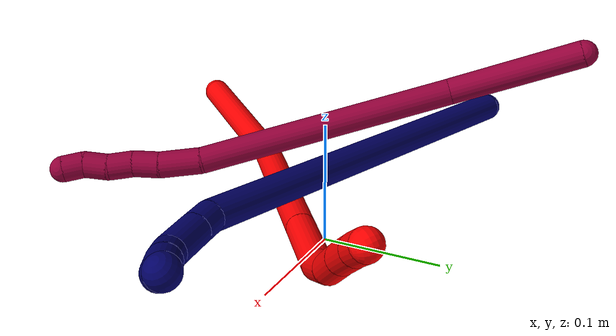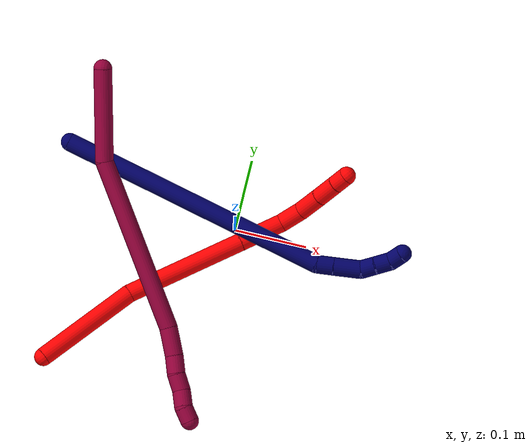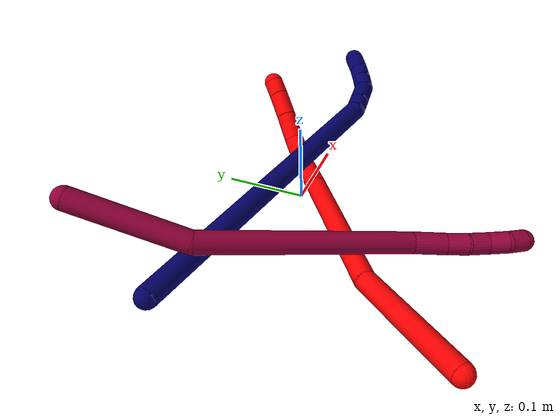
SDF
<sdf version="1.7">
 <world name="default">
  <model name="2">
   <static>0</static>
   <link name="2">
    <collision name="collision-cylinder-e_1_1_4">
     <pose>0.062499 0.038653 0.00422 -1.46206 1.01426 -0.924487</pose>
     <geometry><cylinder><radius>0.0125</radius><length>0.147213</length></cylinder></geometry>
     <surface>
      <friction><ode><mu>1.16</mu><mu2>1.16</mu2><slip1>0</slip1><slip2>0</slip2></ode></friction>
      <contact><ode><kp>1e+06</kp><kd>1</kd><max_vel>0</max_vel><min_depth>0.001</min_depth></ode></contact>
     </surface>
    </collision>
    <visual name="visual-cylinder-e_1_1_4">
     <pose>0.062499 0.038653 0.00422 -1.46206 1.01426 -0.924487</pose>
     <geometry><cylinder><radius>0.0125</radius><length>0.147213</length></cylinder></geometry>
     <material><ambient>1 0 0 1</ambient></material>
    </visual>
    <collision name="collision-cylinder-e_2_4_5">
     <pose>0.185205 0.132095 0.028837 -1.21442 0.800097 -0.571488</pose>
     <geometry><cylinder><radius>0.0125</radius><length>0.167845</length></cylinder></geometry>
     <surface>
      <friction><ode><mu>1.16</mu><mu2>1.16</mu2><slip1>0</slip1><slip2>0</slip2></ode></friction>
      <contact><ode><kp>1e+06</kp><kd>1</kd><max_vel>0</max_vel><min_depth>0.001</min_depth></ode></contact>
     </surface>
    </collision>
    <visual name="visual-cylinder-e_2_4_5">
     <pose>0.185205 0.132095 0.028837 -1.21442 0.800097 -0.571488</pose>
     <geometry><cylinder><radius>0.0125</radius><length>0.167845</length></cylinder></geometry>
     <material><ambient>1 0 0 1</ambient></material>
    </visual>
    <collision name="collision-cylinder-e_3_5_6">
     <pose>0.268393 0.206695 0.056746 -1.20832 0.825975 -0.587433</pose>
     <geometry><cylinder><radius>0.0125</radius><length>0.062513</length></cylinder></geometry>
     <surface>
      <friction><ode><mu>1.16</mu><mu2>1.16</mu2><slip1>0</slip1><slip2>0</slip2></ode></friction>
      <contact><ode><kp>1e+06</kp><kd>1</kd><max_vel>0</max_vel><min_depth>0.001</min_depth></ode></contact>
     </surface>
    </collision>
    <visual name="visual-cylinder-e_3_5_6">
     <pose>0.268393 0.206695 0.056746 -1.20832 0.825975 -0.587433</pose>
     <geometry><cylinder><radius>0.0125</radius><length>0.062513</length></cylinder></geometry>
     <material><ambient>1 0 0 1</ambient></material>
    </visual>
    <collision name="collision-cylinder-e_4_6_7">
     <pose>0.298659 0.241469 0.065617 -1.48028 0.451491 -0.413524</pose>
     <geometry><cylinder><radius>0.0125</radius><length>0.033396</length></cylinder></geometry>
     <surface>
      <friction><ode><mu>1.16</mu><mu2>1.16</mu2><slip1>0</slip1><slip2>0</slip2></ode></friction>
      <contact><ode><kp>1e+06</kp><kd>1</kd><max_vel>0</max_vel><min_depth>0.001</min_depth></ode></contact>
     </surface>
    </collision>
    <visual name="visual-cylinder-e_4_6_7">
     <pose>0.298659 0.241469 0.065617 -1.48028 0.451491 -0.413524</pose>
     <geometry><cylinder><radius>0.0125</radius><length>0.033396</length></cylinder></geometry>
     <material><ambient>1 0 0 1</ambient></material>
    </visual>
    <collision name="collision-cylinder-e_5_7_8">
     <pose>0.309537 0.274146 0.066312 -1.6082 0.199964 -0.207534</pose>
     <geometry><cylinder><radius>0.0125</radius><length>0.036172</length></cylinder></geometry>
     <surface>
      <friction><ode><mu>1.16</mu><mu2>1.16</mu2><slip1>0</slip1><slip2>0</slip2></ode></friction>
      <contact><ode><kp>1e+06</kp><kd>1</kd><max_vel>0</max_vel><min_depth>0.001</min_depth></ode></contact>
     </surface>
    </collision>
    <visual name="visual-cylinder-e_5_7_8">
     <pose>0.309537 0.274146 0.066312 -1.6082 0.199964 -0.207534</pose>
     <geometry><cylinder><radius>0.0125</radius><length>0.036172</length></cylinder></geometry>
     <material><ambient>1 0 0 1</ambient></material>
    </visual>
    <collision name="collision-cylinder-e_6_8_9">
     <pose>0.31691 0.307333 0.064945 -1.61629 0.239376 -0.250409</pose>
     <geometry><cylinder><radius>0.0125</radius><length>0.03189</length></cylinder></geometry>
     <surface>
      <friction><ode><mu>1.16</mu><mu2>1.16</mu2><slip1>0</slip1><slip2>0</slip2></ode></friction>
      <contact><ode><kp>1e+06</kp><kd>1</kd><max_vel>0</max_vel><min_depth>0.001</min_depth></ode></contact>
     </surface>
    </collision>
    <visual name="visual-cylinder-e_6_8_9">
     <pose>0.31691 0.307333 0.064945 -1.61629 0.239376 -0.250409</pose>
     <geometry><cylinder><radius>0.0125</radius><length>0.03189</length></cylinder></geometry>
     <material><ambient>1 0 0 1</ambient></material>
    </visual>
    <collision name="collision-cylinder-e_7_9_2">
     <pose>0.323683 0.332847 0.063791 -1.6155 0.289435 -0.302476</pose>
     <geometry><cylinder><radius>0.0125</radius><length>0.020971</length></cylinder></geometry>
     <surface>
      <friction><ode><mu>1.16</mu><mu2>1.16</mu2><slip1>0</slip1><slip2>0</slip2></ode></friction>
      <contact><ode><kp>1e+06</kp><kd>1</kd><max_vel>0</max_vel><min_depth>0.001</min_depth></ode></contact>
     </surface>
    </collision>
    <visual name="visual-cylinder-e_7_9_2">
     <pose>0.323683 0.332847 0.063791 -1.6155 0.289435 -0.302476</pose>
     <geometry><cylinder><radius>0.0125</radius><length>0.020971</length></cylinder></geometry>
     <material><ambient>1 0 0 1</ambient></material>
    </visual>
    <collision name="collision-sphere-2">
     <pose>0.326676 0.342886 0.063342 0 -0 0</pose>
     <geometry><sphere><radius>0.0125</radius></sphere></geometry>
     <surface>
      <friction><ode><mu>1.16</mu><mu2>1.16</mu2><slip1>0</slip1><slip2>0</slip2></ode></friction>
      <contact><ode><kp>1e+06</kp><kd>1</kd><max_vel>0</max_vel><min_depth>0.001</min_depth></ode></contact>
     </surface>
    </collision>
    <visual name="visual-sphere-2">
     <pose>0.326676 0.342886 0.063342 0 -0 0</pose>
     <geometry><sphere><radius>0.0125</radius></sphere></geometry>
     <material><ambient>1 0 0 1</ambient></material>
    </visual>
    <collision name="collision-sphere-9">
     <pose>0.320691 0.322807 0.06424 0 -0 0</pose>
     <geometry><sphere><radius>0.0125</radius></sphere></geometry>
     <surface>
      <friction><ode><mu>1.16</mu><mu2>1.16</mu2><slip1>0</slip1><slip2>0</slip2></ode></friction>
      <contact><ode><kp>1e+06</kp><kd>1</kd><max_vel>0</max_vel><min_depth>0.001</min_depth></ode></contact>
     </surface>
    </collision>
    <visual name="visual-sphere-9">
     <pose>0.320691 0.322807 0.06424 0 -0 0</pose>
     <geometry><sphere><radius>0.0125</radius></sphere></geometry>
     <material><ambient>1 0 0 1</ambient></material>
    </visual>
    <collision name="collision-sphere-4">
     <pose>0.124997 0.077305 0.008439 0 -0 0</pose>
     <geometry><sphere><radius>0.0125</radius></sphere></geometry>
     <surface>
      <friction><ode><mu>1.16</mu><mu2>1.16</mu2><slip1>0</slip1><slip2>0</slip2></ode></friction>
      <contact><ode><kp>1e+06</kp><kd>1</kd><max_vel>0</max_vel><min_depth>0.001</min_depth></ode></contact>
     </surface>
    </collision>
    <visual name="visual-sphere-4">
     <pose>0.124997 0.077305 0.008439 0 -0 0</pose>
     <geometry><sphere><radius>0.0125</radius></sphere></geometry>
     <material><ambient>1 0 0 1</ambient></material>
    </visual>
    <collision name="collision-sphere-1">
     <geometry><sphere><radius>0.0125</radius></sphere></geometry>
     <surface>
      <friction><ode><mu>1.16</mu><mu2>1.16</mu2><slip1>0</slip1><slip2>0</slip2></ode></friction>
      <contact><ode><kp>1e+06</kp><kd>1</kd><max_vel>0</max_vel><min_depth>0.001</min_depth></ode></contact>
     </surface>
    </collision>
    <visual name="visual-sphere-1">
     <geometry><sphere><radius>0.0125</radius></sphere></geometry>
     <material><ambient>1 0 0 1</ambient></material>
    </visual>
    <collision name="collision-sphere-8">
     <pose>0.31313 0.291859 0.065649 0 -0 0</pose>
     <geometry><sphere><radius>0.0125</radius></sphere></geometry>
     <surface>
      <friction><ode><mu>1.16</mu><mu2>1.16</mu2><slip1>0</slip1><slip2>0</slip2></ode></friction>
      <contact><ode><kp>1e+06</kp><kd>1</kd><max_vel>0</max_vel><min_depth>0.001</min_depth></ode></contact>
     </surface>
    </collision>
    <visual name="visual-sphere-8">
     <pose>0.31313 0.291859 0.065649 0 -0 0</pose>
     <geometry><sphere><radius>0.0125</radius></sphere></geometry>
     <material><ambient>1 0 0 1</ambient></material>
    </visual>
    <collision name="collision-sphere-5">
     <pose>0.245413 0.186885 0.049234 0 -0 0</pose>
     <geometry><sphere><radius>0.0125</radius></sphere></geometry>
     <surface>
      <friction><ode><mu>1.16</mu><mu2>1.16</mu2><slip1>0</slip1><slip2>0</slip2></ode></friction>
      <contact><ode><kp>1e+06</kp><kd>1</kd><max_vel>0</max_vel><min_depth>0.001</min_depth></ode></contact>
     </surface>
    </collision>
    <visual name="visual-sphere-5">
     <pose>0.245413 0.186885 0.049234 0 -0 0</pose>
     <geometry><sphere><radius>0.0125</radius></sphere></geometry>
     <material><ambient>1 0 0 1</ambient></material>
    </visual>
    <collision name="collision-sphere-6">
     <pose>0.291373 0.226506 0.064259 0 -0 0</pose>
     <geometry><sphere><radius>0.0125</radius></sphere></geometry>
     <surface>
      <friction><ode><mu>1.16</mu><mu2>1.16</mu2><slip1>0</slip1><slip2>0</slip2></ode></friction>
      <contact><ode><kp>1e+06</kp><kd>1</kd><max_vel>0</max_vel><min_depth>0.001</min_depth></ode></contact>
     </surface>
    </collision>
    <visual name="visual-sphere-6">
     <pose>0.291373 0.226506 0.064259 0 -0 0</pose>
     <geometry><sphere><radius>0.0125</radius></sphere></geometry>
     <material><ambient>1 0 0 1</ambient></material>
    </visual>
    <collision name="collision-sphere-7">
     <pose>0.305945 0.256433 0.066975 0 -0 0</pose>
     <geometry><sphere><radius>0.0125</radius></sphere></geometry>
     <surface>
      <friction><ode><mu>1.16</mu><mu2>1.16</mu2><slip1>0</slip1><slip2>0</slip2></ode></friction>
      <contact><ode><kp>1e+06</kp><kd>1</kd><max_vel>0</max_vel><min_depth>0.001</min_depth></ode></contact>
     </surface>
    </collision>
    <visual name="visual-sphere-7">
     <pose>0.305945 0.256433 0.066975 0 -0 0</pose>
     <geometry><sphere><radius>0.0125</radius></sphere></geometry>
     <material><ambient>1 0 0 1</ambient></material>
    </visual>
    <inertial>
     <pose>0.190259 0.151089 0.034015 0 -0 0</pose>
     <mass>0.5</mass>
     <inertia>
      <ixx>9.5e-05</ixx>
      <ixy>0</ixy>
      <ixz>0</ixz>
      <iyy>0.000229</iyy>
      <iyz>0</iyz>
      <izz>-0.000967</izz>
     </inertia>
    </inertial>
   </link>
   <pose>-0.210618 -0.235106 0.030195 1.86732 0.649611 1.11023</pose>
  </model>
  <model name="7">
   <static>0</static>
   <link name="7">
    <collision name="collision-cylinder-e_1_1_4">
     <pose>0.147605 -0.035317 0.112161 0.30505 0.898103 0.14788</pose>
     <geometry><cylinder><radius>0.0125</radius><length>0.377437</length></cylinder></geometry>
     <surface>
      <friction><ode><mu>1.16</mu><mu2>1.16</mu2><slip1>0</slip1><slip2>0</slip2></ode></friction>
      <contact><ode><kp>1e+06</kp><kd>1</kd><max_vel>0</max_vel><min_depth>0.001</min_depth></ode></contact>
     </surface>
    </collision>
    <visual name="visual-cylinder-e_1_1_4">
     <pose>0.147605 -0.035317 0.112161 0.30505 0.898103 0.14788</pose>
     <geometry><cylinder><radius>0.0125</radius><length>0.377437</length></cylinder></geometry>
     <material><ambient>0.003922 0 0.403922 1</ambient></material>
    </visual>
    <collision name="collision-cylinder-e_2_4_5">
     <pose>0.304633 -0.068954 0.230549 -0.263365 0.970467 -0.139449</pose>
     <geometry><cylinder><radius>0.0125</radius><length>0.022838</length></cylinder></geometry>
     <surface>
      <friction><ode><mu>1.16</mu><mu2>1.16</mu2><slip1>0</slip1><slip2>0</slip2></ode></friction>
      <contact><ode><kp>1e+06</kp><kd>1</kd><max_vel>0</max_vel><min_depth>0.001</min_depth></ode></contact>
     </surface>
    </collision>
    <visual name="visual-cylinder-e_2_4_5">
     <pose>0.304633 -0.068954 0.230549 -0.263365 0.970467 -0.139449</pose>
     <geometry><cylinder><radius>0.0125</radius><length>0.022838</length></cylinder></geometry>
     <material><ambient>0.003922 0 0.403922 1</ambient></material>
    </visual>
    <collision name="collision-cylinder-e_3_5_6">
     <pose>0.329516 -0.06435 0.246897 -0.281433 0.972741 -0.149514</pose>
     <geometry><cylinder><radius>0.0125</radius><length>0.037416</length></cylinder></geometry>
     <surface>
      <friction><ode><mu>1.16</mu><mu2>1.16</mu2><slip1>0</slip1><slip2>0</slip2></ode></friction>
      <contact><ode><kp>1e+06</kp><kd>1</kd><max_vel>0</max_vel><min_depth>0.001</min_depth></ode></contact>
     </surface>
    </collision>
    <visual name="visual-cylinder-e_3_5_6">
     <pose>0.329516 -0.06435 0.246897 -0.281433 0.972741 -0.149514</pose>
     <geometry><cylinder><radius>0.0125</radius><length>0.037416</length></cylinder></geometry>
     <material><ambient>0.003922 0 0.403922 1</ambient></material>
    </visual>
    <collision name="collision-cylinder-e_4_6_7">
     <pose>0.350948 -0.05635 0.263418 -0.670176 0.631123 -0.226395</pose>
     <geometry><cylinder><radius>0.0125</radius><length>0.020239</length></cylinder></geometry>
     <surface>
      <friction><ode><mu>1.16</mu><mu2>1.16</mu2><slip1>0</slip1><slip2>0</slip2></ode></friction>
      <contact><ode><kp>1e+06</kp><kd>1</kd><max_vel>0</max_vel><min_depth>0.001</min_depth></ode></contact>
     </surface>
    </collision>
    <visual name="visual-cylinder-e_4_6_7">
     <pose>0.350948 -0.05635 0.263418 -0.670176 0.631123 -0.226395</pose>
     <geometry><cylinder><radius>0.0125</radius><length>0.020239</length></cylinder></geometry>
     <material><ambient>0.003922 0 0.403922 1</ambient></material>
    </visual>
    <collision name="collision-cylinder-e_5_7_8">
     <pose>0.364091 -0.045582 0.275881 -0.754203 0.711724 -0.292317</pose>
     <geometry><cylinder><radius>0.0125</radius><length>0.021961</length></cylinder></geometry>
     <surface>
      <friction><ode><mu>1.16</mu><mu2>1.16</mu2><slip1>0</slip1><slip2>0</slip2></ode></friction>
      <contact><ode><kp>1e+06</kp><kd>1</kd><max_vel>0</max_vel><min_depth>0.001</min_depth></ode></contact>
     </surface>
    </collision>
    <visual name="visual-cylinder-e_5_7_8">
     <pose>0.364091 -0.045582 0.275881 -0.754203 0.711724 -0.292317</pose>
     <geometry><cylinder><radius>0.0125</radius><length>0.021961</length></cylinder></geometry>
     <material><ambient>0.003922 0 0.403922 1</ambient></material>
    </visual>
    <collision name="collision-cylinder-e_6_8_2">
     <pose>0.373901 -0.033269 0.289035 -0.750816 0.265541 -0.105171</pose>
     <geometry><cylinder><radius>0.0125</radius><length>0.02011</length></cylinder></geometry>
     <surface>
      <friction><ode><mu>1.16</mu><mu2>1.16</mu2><slip1>0</slip1><slip2>0</slip2></ode></friction>
      <contact><ode><kp>1e+06</kp><kd>1</kd><max_vel>0</max_vel><min_depth>0.001</min_depth></ode></contact>
     </surface>
    </collision>
    <visual name="visual-cylinder-e_6_8_2">
     <pose>0.373901 -0.033269 0.289035 -0.750816 0.265541 -0.105171</pose>
     <geometry><cylinder><radius>0.0125</radius><length>0.02011</length></cylinder></geometry>
     <material><ambient>0.003922 0 0.403922 1</ambient></material>
    </visual>
    <collision name="collision-sphere-2">
     <pose>0.37654 -0.02665 0.296129 0 -0 0</pose>
     <geometry><sphere><radius>0.0125</radius></sphere></geometry>
     <surface>
      <friction><ode><mu>1.16</mu><mu2>1.16</mu2><slip1>0</slip1><slip2>0</slip2></ode></friction>
      <contact><ode><kp>1e+06</kp><kd>1</kd><max_vel>0</max_vel><min_depth>0.001</min_depth></ode></contact>
     </surface>
    </collision>
    <visual name="visual-sphere-2">
     <pose>0.37654 -0.02665 0.296129 0 -0 0</pose>
     <geometry><sphere><radius>0.0125</radius></sphere></geometry>
     <material><ambient>0.003922 0 0.403922 1</ambient></material>
    </visual>
    <collision name="collision-sphere-4">
     <pose>0.295211 -0.070634 0.224321 0 -0 0</pose>
     <geometry><sphere><radius>0.0125</radius></sphere></geometry>
     <surface>
      <friction><ode><mu>1.16</mu><mu2>1.16</mu2><slip1>0</slip1><slip2>0</slip2></ode></friction>
      <contact><ode><kp>1e+06</kp><kd>1</kd><max_vel>0</max_vel><min_depth>0.001</min_depth></ode></contact>
     </surface>
    </collision>
    <visual name="visual-sphere-4">
     <pose>0.295211 -0.070634 0.224321 0 -0 0</pose>
     <geometry><sphere><radius>0.0125</radius></sphere></geometry>
     <material><ambient>0.003922 0 0.403922 1</ambient></material>
    </visual>
    <collision name="collision-sphere-1">
     <geometry><sphere><radius>0.0125</radius></sphere></geometry>
     <surface>
      <friction><ode><mu>1.16</mu><mu2>1.16</mu2><slip1>0</slip1><slip2>0</slip2></ode></friction>
      <contact><ode><kp>1e+06</kp><kd>1</kd><max_vel>0</max_vel><min_depth>0.001</min_depth></ode></contact>
     </surface>
    </collision>
    <visual name="visual-sphere-1">
     <geometry><sphere><radius>0.0125</radius></sphere></geometry>
     <material><ambient>0.003922 0 0.403922 1</ambient></material>
    </visual>
    <collision name="collision-sphere-8">
     <pose>0.371263 -0.039888 0.281941 0 -0 0</pose>
     <geometry><sphere><radius>0.0125</radius></sphere></geometry>
     <surface>
      <friction><ode><mu>1.16</mu><mu2>1.16</mu2><slip1>0</slip1><slip2>0</slip2></ode></friction>
      <contact><ode><kp>1e+06</kp><kd>1</kd><max_vel>0</max_vel><min_depth>0.001</min_depth></ode></contact>
     </surface>
    </collision>
    <visual name="visual-sphere-8">
     <pose>0.371263 -0.039888 0.281941 0 -0 0</pose>
     <geometry><sphere><radius>0.0125</radius></sphere></geometry>
     <material><ambient>0.003922 0 0.403922 1</ambient></material>
    </visual>
    <collision name="collision-sphere-5">
     <pose>0.314056 -0.067275 0.236778 0 -0 0</pose>
     <geometry><sphere><radius>0.0125</radius></sphere></geometry>
     <surface>
      <friction><ode><mu>1.16</mu><mu2>1.16</mu2><slip1>0</slip1><slip2>0</slip2></ode></friction>
      <contact><ode><kp>1e+06</kp><kd>1</kd><max_vel>0</max_vel><min_depth>0.001</min_depth></ode></contact>
     </surface>
    </collision>
    <visual name="visual-sphere-5">
     <pose>0.314056 -0.067275 0.236778 0 -0 0</pose>
     <geometry><sphere><radius>0.0125</radius></sphere></geometry>
     <material><ambient>0.003922 0 0.403922 1</ambient></material>
    </visual>
    <collision name="collision-sphere-6">
     <pose>0.344977 -0.061424 0.257015 0 -0 0</pose>
     <geometry><sphere><radius>0.0125</radius></sphere></geometry>
     <surface>
      <friction><ode><mu>1.16</mu><mu2>1.16</mu2><slip1>0</slip1><slip2>0</slip2></ode></friction>
      <contact><ode><kp>1e+06</kp><kd>1</kd><max_vel>0</max_vel><min_depth>0.001</min_depth></ode></contact>
     </surface>
    </collision>
    <visual name="visual-sphere-6">
     <pose>0.344977 -0.061424 0.257015 0 -0 0</pose>
     <geometry><sphere><radius>0.0125</radius></sphere></geometry>
     <material><ambient>0.003922 0 0.403922 1</ambient></material>
    </visual>
    <collision name="collision-sphere-7">
     <pose>0.356919 -0.051275 0.269822 0 -0 0</pose>
     <geometry><sphere><radius>0.0125</radius></sphere></geometry>
     <surface>
      <friction><ode><mu>1.16</mu><mu2>1.16</mu2><slip1>0</slip1><slip2>0</slip2></ode></friction>
      <contact><ode><kp>1e+06</kp><kd>1</kd><max_vel>0</max_vel><min_depth>0.001</min_depth></ode></contact>
     </surface>
    </collision>
    <visual name="visual-sphere-7">
     <pose>0.356919 -0.051275 0.269822 0 -0 0</pose>
     <geometry><sphere><radius>0.0125</radius></sphere></geometry>
     <material><ambient>0.003922 0 0.403922 1</ambient></material>
    </visual>
    <inertial>
     <pose>0.195231 -0.040246 0.148078 0 -0 0</pose>
     <mass>0.5</mass>
     <inertia>
      <ixx>0.003219</ixx>
      <ixy>0</ixy>
      <ixz>0</ixz>
      <iyy>0.004817</iyy>
      <iyz>0</iyz>
      <izz>-0.002664</izz>
     </inertia>
    </inertial>
   </link>
   <pose>-0.245879 0.058296 0.047189 0.110108 0.576084 0.014632</pose>
  </model>
  <model name="8">
   <static>0</static>
   <link name="8">
    <collision name="collision-cylinder-e_1_1_4">
     <pose>0.031975 -0.054563 -0.00279 1.62189 0.529503 0.555899</pose>
     <geometry><cylinder><radius>0.0125</radius><length>0.126607</length></cylinder></geometry>
     <surface>
      <friction><ode><mu>1.16</mu><mu2>1.16</mu2><slip1>0</slip1><slip2>0</slip2></ode></friction>
      <contact><ode><kp>1e+06</kp><kd>1</kd><max_vel>0</max_vel><min_depth>0.001</min_depth></ode></contact>
     </surface>
    </collision>
    <visual name="visual-cylinder-e_1_1_4">
     <pose>0.031975 -0.054563 -0.00279 1.62189 0.529503 0.555899</pose>
     <geometry><cylinder><radius>0.0125</radius><length>0.126607</length></cylinder></geometry>
     <material><ambient>0.584314 0 0.227451 1</ambient></material>
    </visual>
    <collision name="collision-cylinder-e_2_4_5">
     <pose>0.129253 -0.203589 0.032456 1.18799 0.570217 0.390835</pose>
     <geometry><cylinder><radius>0.0125</radius><length>0.241946</length></cylinder></geometry>
     <surface>
      <friction><ode><mu>1.16</mu><mu2>1.16</mu2><slip1>0</slip1><slip2>0</slip2></ode></friction>
      <contact><ode><kp>1e+06</kp><kd>1</kd><max_vel>0</max_vel><min_depth>0.001</min_depth></ode></contact>
     </surface>
    </collision>
    <visual name="visual-cylinder-e_2_4_5">
     <pose>0.129253 -0.203589 0.032456 1.18799 0.570217 0.390835</pose>
     <geometry><cylinder><radius>0.0125</radius><length>0.241946</length></cylinder></geometry>
     <material><ambient>0.584314 0 0.227451 1</ambient></material>
    </visual>
    <collision name="collision-cylinder-e_3_5_6">
     <pose>0.202295 -0.315598 0.075088 1.31468 0.403311 0.313005</pose>
     <geometry><cylinder><radius>0.0125</radius><length>0.03944</length></cylinder></geometry>
     <surface>
      <friction><ode><mu>1.16</mu><mu2>1.16</mu2><slip1>0</slip1><slip2>0</slip2></ode></friction>
      <contact><ode><kp>1e+06</kp><kd>1</kd><max_vel>0</max_vel><min_depth>0.001</min_depth></ode></contact>
     </surface>
    </collision>
    <visual name="visual-cylinder-e_3_5_6">
     <pose>0.202295 -0.315598 0.075088 1.31468 0.403311 0.313005</pose>
     <geometry><cylinder><radius>0.0125</radius><length>0.03944</length></cylinder></geometry>
     <material><ambient>0.584314 0 0.227451 1</ambient></material>
    </visual>
    <collision name="collision-cylinder-e_4_6_7">
     <pose>0.213133 -0.344976 0.082361 1.34815 0.250053 0.200147</pose>
     <geometry><cylinder><radius>0.0125</radius><length>0.025042</length></cylinder></geometry>
     <surface>
      <friction><ode><mu>1.16</mu><mu2>1.16</mu2><slip1>0</slip1><slip2>0</slip2></ode></friction>
      <contact><ode><kp>1e+06</kp><kd>1</kd><max_vel>0</max_vel><min_depth>0.001</min_depth></ode></contact>
     </surface>
    </collision>
    <visual name="visual-cylinder-e_4_6_7">
     <pose>0.213133 -0.344976 0.082361 1.34815 0.250053 0.200147</pose>
     <geometry><cylinder><radius>0.0125</radius><length>0.025042</length></cylinder></geometry>
     <material><ambient>0.584314 0 0.227451 1</ambient></material>
    </visual>
    <collision name="collision-cylinder-e_5_7_8">
     <pose>0.221255 -0.366844 0.088845 1.20836 0.437801 0.304752</pose>
     <geometry><cylinder><radius>0.0125</radius><length>0.023701</length></cylinder></geometry>
     <surface>
      <friction><ode><mu>1.16</mu><mu2>1.16</mu2><slip1>0</slip1><slip2>0</slip2></ode></friction>
      <contact><ode><kp>1e+06</kp><kd>1</kd><max_vel>0</max_vel><min_depth>0.001</min_depth></ode></contact>
     </surface>
    </collision>
    <visual name="visual-cylinder-e_5_7_8">
     <pose>0.221255 -0.366844 0.088845 1.20836 0.437801 0.304752</pose>
     <geometry><cylinder><radius>0.0125</radius><length>0.023701</length></cylinder></geometry>
     <material><ambient>0.584314 0 0.227451 1</ambient></material>
    </visual>
    <collision name="collision-cylinder-e_6_8_9">
     <pose>0.228418 -0.387853 0.095675 1.30188 0.1857 0.141616</pose>
     <geometry><cylinder><radius>0.0125</radius><length>0.023163</length></cylinder></geometry>
     <surface>
      <friction><ode><mu>1.16</mu><mu2>1.16</mu2><slip1>0</slip1><slip2>0</slip2></ode></friction>
      <contact><ode><kp>1e+06</kp><kd>1</kd><max_vel>0</max_vel><min_depth>0.001</min_depth></ode></contact>
     </surface>
    </collision>
    <visual name="visual-cylinder-e_6_8_9">
     <pose>0.228418 -0.387853 0.095675 1.30188 0.1857 0.141616</pose>
     <geometry><cylinder><radius>0.0125</radius><length>0.023163</length></cylinder></geometry>
     <material><ambient>0.584314 0 0.227451 1</ambient></material>
    </visual>
    <collision name="collision-cylinder-e_7_9_2">
     <pose>0.235482 -0.406634 0.102671 1.10018 0.512249 0.31846</pose>
     <geometry><cylinder><radius>0.0125</radius><length>0.020101</length></cylinder></geometry>
     <surface>
      <friction><ode><mu>1.16</mu><mu2>1.16</mu2><slip1>0</slip1><slip2>0</slip2></ode></friction>
      <contact><ode><kp>1e+06</kp><kd>1</kd><max_vel>0</max_vel><min_depth>0.001</min_depth></ode></contact>
     </surface>
    </collision>
    <visual name="visual-cylinder-e_7_9_2">
     <pose>0.235482 -0.406634 0.102671 1.10018 0.512249 0.31846</pose>
     <geometry><cylinder><radius>0.0125</radius><length>0.020101</length></cylinder></geometry>
     <material><ambient>0.584314 0 0.227451 1</ambient></material>
    </visual>
    <collision name="collision-sphere-2">
     <pose>0.240408 -0.414442 0.106644 0 -0 0</pose>
     <geometry><sphere><radius>0.0125</radius></sphere></geometry>
     <surface>
      <friction><ode><mu>1.16</mu><mu2>1.16</mu2><slip1>0</slip1><slip2>0</slip2></ode></friction>
      <contact><ode><kp>1e+06</kp><kd>1</kd><max_vel>0</max_vel><min_depth>0.001</min_depth></ode></contact>
     </surface>
    </collision>
    <visual name="visual-sphere-2">
     <pose>0.240408 -0.414442 0.106644 0 -0 0</pose>
     <geometry><sphere><radius>0.0125</radius></sphere></geometry>
     <material><ambient>0.584314 0 0.227451 1</ambient></material>
    </visual>
    <collision name="collision-sphere-9">
     <pose>0.230556 -0.398826 0.098699 0 -0 0</pose>
     <geometry><sphere><radius>0.0125</radius></sphere></geometry>
     <surface>
      <friction><ode><mu>1.16</mu><mu2>1.16</mu2><slip1>0</slip1><slip2>0</slip2></ode></friction>
      <contact><ode><kp>1e+06</kp><kd>1</kd><max_vel>0</max_vel><min_depth>0.001</min_depth></ode></contact>
     </surface>
    </collision>
    <visual name="visual-sphere-9">
     <pose>0.230556 -0.398826 0.098699 0 -0 0</pose>
     <geometry><sphere><radius>0.0125</radius></sphere></geometry>
     <material><ambient>0.584314 0 0.227451 1</ambient></material>
    </visual>
    <collision name="collision-sphere-4">
     <pose>0.06395 -0.109126 -0.005581 0 -0 0</pose>
     <geometry><sphere><radius>0.0125</radius></sphere></geometry>
     <surface>
      <friction><ode><mu>1.16</mu><mu2>1.16</mu2><slip1>0</slip1><slip2>0</slip2></ode></friction>
      <contact><ode><kp>1e+06</kp><kd>1</kd><max_vel>0</max_vel><min_depth>0.001</min_depth></ode></contact>
     </surface>
    </collision>
    <visual name="visual-sphere-4">
     <pose>0.06395 -0.109126 -0.005581 0 -0 0</pose>
     <geometry><sphere><radius>0.0125</radius></sphere></geometry>
     <material><ambient>0.584314 0 0.227451 1</ambient></material>
    </visual>
    <collision name="collision-sphere-1">
     <geometry><sphere><radius>0.0125</radius></sphere></geometry>
     <surface>
      <friction><ode><mu>1.16</mu><mu2>1.16</mu2><slip1>0</slip1><slip2>0</slip2></ode></friction>
      <contact><ode><kp>1e+06</kp><kd>1</kd><max_vel>0</max_vel><min_depth>0.001</min_depth></ode></contact>
     </surface>
    </collision>
    <visual name="visual-sphere-1">
     <geometry><sphere><radius>0.0125</radius></sphere></geometry>
     <material><ambient>0.584314 0 0.227451 1</ambient></material>
    </visual>
    <collision name="collision-sphere-8">
     <pose>0.226279 -0.376879 0.092651 0 -0 0</pose>
     <geometry><sphere><radius>0.0125</radius></sphere></geometry>
     <surface>
      <friction><ode><mu>1.16</mu><mu2>1.16</mu2><slip1>0</slip1><slip2>0</slip2></ode></friction>
      <contact><ode><kp>1e+06</kp><kd>1</kd><max_vel>0</max_vel><min_depth>0.001</min_depth></ode></contact>
     </surface>
    </collision>
    <visual name="visual-sphere-8">
     <pose>0.226279 -0.376879 0.092651 0 -0 0</pose>
     <geometry><sphere><radius>0.0125</radius></sphere></geometry>
     <material><ambient>0.584314 0 0.227451 1</ambient></material>
    </visual>
    <collision name="collision-sphere-5">
     <pose>0.194556 -0.298052 0.070493 0 -0 0</pose>
     <geometry><sphere><radius>0.0125</radius></sphere></geometry>
     <surface>
      <friction><ode><mu>1.16</mu><mu2>1.16</mu2><slip1>0</slip1><slip2>0</slip2></ode></friction>
      <contact><ode><kp>1e+06</kp><kd>1</kd><max_vel>0</max_vel><min_depth>0.001</min_depth></ode></contact>
     </surface>
    </collision>
    <visual name="visual-sphere-5">
     <pose>0.194556 -0.298052 0.070493 0 -0 0</pose>
     <geometry><sphere><radius>0.0125</radius></sphere></geometry>
     <material><ambient>0.584314 0 0.227451 1</ambient></material>
    </visual>
    <collision name="collision-sphere-6">
     <pose>0.210035 -0.333144 0.079683 0 -0 0</pose>
     <geometry><sphere><radius>0.0125</radius></sphere></geometry>
     <surface>
      <friction><ode><mu>1.16</mu><mu2>1.16</mu2><slip1>0</slip1><slip2>0</slip2></ode></friction>
      <contact><ode><kp>1e+06</kp><kd>1</kd><max_vel>0</max_vel><min_depth>0.001</min_depth></ode></contact>
     </surface>
    </collision>
    <visual name="visual-sphere-6">
     <pose>0.210035 -0.333144 0.079683 0 -0 0</pose>
     <geometry><sphere><radius>0.0125</radius></sphere></geometry>
     <material><ambient>0.584314 0 0.227451 1</ambient></material>
    </visual>
    <collision name="collision-sphere-7">
     <pose>0.216231 -0.356808 0.08504 0 -0 0</pose>
     <geometry><sphere><radius>0.0125</radius></sphere></geometry>
     <surface>
      <friction><ode><mu>1.16</mu><mu2>1.16</mu2><slip1>0</slip1><slip2>0</slip2></ode></friction>
      <contact><ode><kp>1e+06</kp><kd>1</kd><max_vel>0</max_vel><min_depth>0.001</min_depth></ode></contact>
     </surface>
    </collision>
    <visual name="visual-sphere-7">
     <pose>0.216231 -0.356808 0.08504 0 -0 0</pose>
     <geometry><sphere><radius>0.0125</radius></sphere></geometry>
     <material><ambient>0.584314 0 0.227451 1</ambient></material>
    </visual>
    <inertial>
     <pose>0.127809 -0.206208 0.037818 0 -0 0</pose>
     <mass>0.5</mass>
     <inertia>
      <ixx>0.00155</ixx>
      <ixy>0</ixy>
      <ixz>0</ixz>
      <iyy>0.001114</iyy>
      <iyz>0</iyz>
      <izz>0.000365</izz>
     </inertia>
    </inertial>
   </link>
   <pose>-0.220195 0.152295 0.120927 -0.281098 1.0786 -0.209261</pose>
  </model>
 </world>
</sdf>
